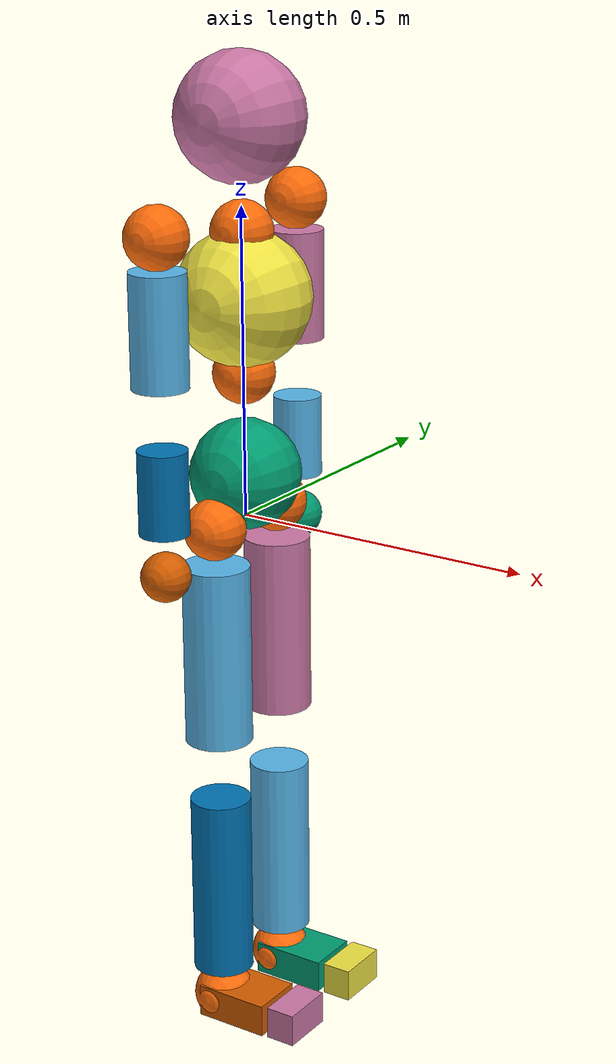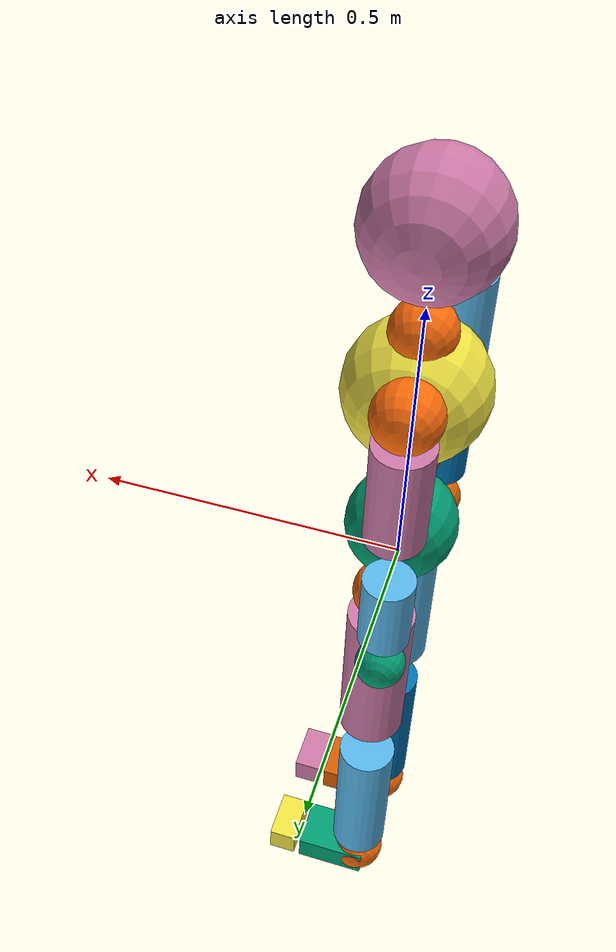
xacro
<?xml version="1.0"?>
<robot  xmlns:xacro="http://www.ros.org/wiki/xacro"  name="dumpUrdf">

<material name="orange">
  <color rgba="${255/255} ${108/255} ${10/255} 1.0"/>
</material>

<xacro:macro name="ball_joint" params="parent child limit effort_limit *origin">

  <link name="${parent}_${child}_link1">
    <inertial>
      <mass value="1e-02" />
      <inertia ixx="1e-02" ixy="0" ixz="0" iyy="1e-02" iyz="0" izz="1e-02" />
    </inertial>
  </link>

  <joint name="j_${parent}_${child}_joint1" type="revolute">
	<xacro:insert_block name="origin"/>
    <parent link="${parent}"/>
    <child link="${parent}_${child}_link1"/>
    <axis xyz="1 0 0" />
	<limit effort="${effort_limit}" lower="${-limit}" upper="${limit}" velocity="3"/>
  </joint>

  <link name="${parent}_${child}_link2">
    <inertial>
      <mass value="1e-02" />
      <inertia ixx="1e-02" ixy="0" ixz="0" iyy="1e-02" iyz="0" izz="1e-02" />
    </inertial>

	<visual>
		<geometry>
			<sphere radius="0.05"  />
		</geometry>
		<material name="orange"/>
	</visual>
  </link>

  <joint name="j_${parent}_${child}_joint2" type="revolute">
    <parent link="${parent}_${child}_link1"/>
    <child link="${parent}_${child}_link2"/>
    <axis xyz="0 1 0" />
	<limit effort="${effort_limit}" lower="${-limit}" upper="${limit}" velocity="3"/>
  </joint>

  <joint name="j_${parent}_${child}_joint3" type="revolute">
    <parent link="${parent}_${child}_link2"/>
    <child link="${child}"/>
    <axis xyz="0 0 1" />
	<limit effort="${effort_limit}" lower="${-limit}" upper="${limit}" velocity="3"/>
  </joint>

</xacro:macro>

<xacro:macro name="sphere_v_c" params="radius *origin">
	<collision>
		<xacro:insert_block name="origin"/>
		<geometry>
			<sphere radius = "${radius/2}"/>
		</geometry>
	</collision>
	<visual>
		<xacro:insert_block name="origin"/>
		<geometry>
			<sphere radius="${radius/2}"/>
		</geometry>
	</visual>
</xacro:macro>

<xacro:macro name="cylinder_v_c" params="radius length *origin">
	<collision>
		<xacro:insert_block name="origin"/>
		<geometry>
			<cylinder length="${length*3/4}" radius = "${radius/4}"/>
		</geometry>
	</collision>
	<visual>
		<xacro:insert_block name="origin"/>
		<geometry>
			<cylinder length="${length}" radius="${radius/2}"/>
		</geometry>
	</visual>
</xacro:macro>

<xacro:macro name="box_v_c" params="x y z *origin">
	<collision>
		<xacro:insert_block name="origin"/>
		<geometry>
			<box size="${x} ${y} ${z}" />
		</geometry>
	</collision>
	<visual>
		<xacro:insert_block name="origin"/>
		<geometry>
			<box size="${x} ${y} ${z}" />
		</geometry>
	</visual>

</xacro:macro>

	<link name="base_link">
	</link>

	<link name="base" >
	</link>

	<joint name="j_base_base_link_rotation" type="fixed">
		<parent link = "base_link" />
		<child link="base" />
		<origin rpy = "${pi/2} 0 0" xyz = "0 0 0" />
	</joint>

	<link name="root" >
		<inertial>
			<origin rpy = "0 0 0" xyz = "0.0 0.07 0.0" />
			<mass value = "6.000000" />
      		<inertia ixx="0.019440000000000002" ixy="0" ixz="0" iyy="0.019440000000000002" iyz="0" izz="0.019440000000000002"/>
		</inertial>

		<xacro:sphere_v_c radius="0.18">
			<origin rpy = "0 0 0" xyz = "0.000000 0.070000 0.000000" />
		</xacro:sphere_v_c>
	</link>
	<joint name="j_root" type="fixed" >
		<parent link = "base" />
		<child link="root" />
		<origin rpy = "0 0 0" xyz = "0 0.000000 0.000000" />
	</joint>

	<link name="chest" >
		<inertial>
			<origin rpy = "0 0 0" xyz = "0.000000 0.120000 0.000000" />
			<mass value = "14.000000" />
      		<inertia ixx="0.06776000000000001" ixy="0" ixz="0" iyy="0.06776000000000001" iyz="0" izz="0.06776000000000001"/>
		</inertial>

		<xacro:sphere_v_c radius="0.22">
			<origin rpy = "0 0 0" xyz = "0.000000 0.120000 0.000000" />
		</xacro:sphere_v_c>
	</link>

	<xacro:ball_joint parent="root" child="chest" limit="1.2" effort_limit="200">
		<origin rpy = "0 0 0" xyz = "0.000000 0.236151 0.000000" />
	</xacro:ball_joint>

	<link name="neck" >
		<inertial>
			<origin rpy = "0 0 0" xyz = "0.0 0.175 0.0" />
			<mass value = "2.000000" />
      		<inertia ixx="0.008405" ixy="0" ixz="0" iyy="0.008405" iyz="0" izz="0.008405"/>
		</inertial>

		<xacro:sphere_v_c radius="0.205">
			<origin rpy = "0 0 0" xyz = "0.0 0.175 0.0" />
		</xacro:sphere_v_c>
	</link>

	<xacro:ball_joint parent="chest" child="neck" limit="1" effort_limit="50" >
		<origin rpy = "0 0 0" xyz = "0.000000 0.223894 0.000000" />
	</xacro:ball_joint>

	<link name="right_hip" >
		<inertial>
			<origin rpy = "0 0 0" xyz = "0.000000 -0.210000 0.000000" />
			<mass value = "4.500000" />
			<inertia ixx="0.037153124999999995" ixy="0.0" ixz="0.0" iyy="0.037153124999999995" iyz="0.0" izz="0.00680625"/>
		</inertial>

		<xacro:cylinder_v_c radius="0.11" length="0.3">
				<origin rpy = "${pi/2} 0 0" xyz = "0.000000 -0.210000 0.000000" />
		</xacro:cylinder_v_c>
	</link>

	<xacro:ball_joint parent="root" child="right_hip" limit="1.5" effort_limit="200">
		<origin rpy = "0 0 0" xyz = "0.000000 0.000000 0.084887" />
	</xacro:ball_joint>

	<link name="right_knee" >
		<inertial>
			<origin rpy = "0 0 0" xyz = "0.000000 -0.200000 0.000000" />
			<mass value = "3.000000" />
			<inertia ixx = "0.1" ixy = "0" ixz = "0" iyy = "0.1" iyz = "0" izz = "0.1" />
		</inertial>
		<xacro:cylinder_v_c length="0.31" radius="0.1">
			<origin rpy = "${pi/2} 0 0" xyz = "0.000000 -0.200000 0.000000" />
		</xacro:cylinder_v_c>
	</link>

	<joint name="j_right_knee" type="revolute" >
		<parent link="right_hip" />
		<child link="right_knee" />
		<limit effort="150.0" lower="-3.14" upper="0." velocity="0.5"/>
		<origin rpy = "0 0 0" xyz = "0.000000 -0.421546 0.000000" />
		<axis xyz = "0.000000 0.000000 1.000000" />
	</joint>

	<link name="right_ankle" >
		<inertial>
			<origin rpy = "0 0 0" xyz = "0.045 -0.00225 0.000000" />
			<mass value = "1.000000" />
			<inertia ixx="0.0009270833333333333" ixy="0.0" ixz="0.0" iyy="0.0028628333333333327" iyz="0.0" izz="0.003285749999999999"/>
		</inertial>

		<xacro:box_v_c x="0.127" y="0.055" z = "0.09">
			<origin rpy = "0 0 0" xyz = "0.045 -0.00225 0.000000"  />
		</xacro:box_v_c>
	</link>

	<joint name="j_right_toe" type="fixed" >
		<parent link="right_ankle" />
		<child link="right_toe" />
		<limit effort="150.0" lower="-3.14" upper="0." velocity="0.5"/>
		<origin rpy = "0 0 0" xyz = "0.1 0.0 0.0" />
		<axis xyz = "0.000000 0.000000 1.000000" />
	</joint>

	<link name="right_toe" >
		<inertial>
			<origin rpy = "0 0 0" xyz = "0.045 0.0 0.0" />
			<mass value = "0.3" />
			<inertia ixx="0.0009270833333333333" ixy="0.0" ixz="0.0" iyy="0.0028628333333333327" iyz="0.0" izz="0.003285749999999999"/>
		</inertial>

		<xacro:box_v_c x="0.05" y="0.055" z = "0.09">
				<origin rpy = "0 0 0" xyz = "0.045 0.0 0.0" />
		</xacro:box_v_c>
	</link>

	<xacro:ball_joint parent="right_knee" child="right_ankle" limit="1.2" effort_limit="90">
		<origin rpy = "0 0 0" xyz = "0.000000 -0.409870 0.000000" />
	</xacro:ball_joint>

	<link name="right_shoulder" >
		<inertial>
			<origin rpy = "0 0 0" xyz = "0.000000 -0.140000 0.000000" />
			<mass value = "1.500000" />
			<inertia ixx="0.004809374999999999" ixy="0.0" ixz="0.0" iyy="0.004809374999999999" iyz="0.0" izz="0.0015187500000000001"/>
		</inertial>

		<xacro:cylinder_v_c length="0.18" radius="0.09">
			<origin rpy = "${pi/2} 0 0" xyz = "0.000000 -0.140000 0.000000" />
		</xacro:cylinder_v_c>
	</link>

	<xacro:ball_joint parent="chest" child="right_shoulder" limit="3.14" effort_limit="100">
		<origin rpy = "0 0 0" xyz = "-0.02406 0.24350 0.18311" />
	</xacro:ball_joint>

	<link name="right_elbow" >
		<inertial>
			<origin rpy = "0 0 0" xyz = "0.000000 -0.120000 0.000000" />
			<mass value = "1.000000" />
			<inertia ixx="0.0019187499999999999" ixy="0.0" ixz="0.0" iyy="0.0019187499999999999" iyz="0.0" izz="0.0008"/>
		</inertial>

		<xacro:cylinder_v_c length="0.135" radius="0.08">
				<origin rpy = "${pi/2} 0 0" xyz = "0.0 -0.12 0.0" />
		</xacro:cylinder_v_c>
	</link>
	<joint name="j_right_elbow" type="revolute" >
		<parent link="right_shoulder" />
		<child link="right_elbow" />
		<limit effort="60.0" lower="0" upper="3.14" velocity="0.5"/>
		<origin rpy = "0 0 0" xyz = "0.000000 -0.274788 0.000000" />
		<axis xyz = "0.000000 0.000000 1.000000" />
	</joint>

	<link name="right_wrist" >
		<inertial>
			<origin rpy = "0 0 0" xyz = "0.000000 0.000000 0.000000" />
			<mass value = "0.500000" />
			<inertia ixx="0.00032" ixy="0" ixz="0" iyy="0.00032" iyz="0" izz="0.00032"/>
		</inertial>

		<xacro:sphere_v_c radius="0.08">
			<origin rpy = "0 0 0" xyz = "0.000000 0.000000 0.000000" />
		</xacro:sphere_v_c>
	</link>

	<joint name="j_right_wrist" type="fixed" >
		<parent link="right_elbow" />
		<child link="right_wrist" />
		<origin rpy = "0 0 0" xyz = "0.000000 -0.258947 0.000000" />
	</joint>

	<link name="left_hip" >
		<inertial>
			<origin rpy = "0 0 0" xyz = "0.000000 -0.210000 0.000000" />
			<mass value = "4.500000" />
			<inertia ixx="0.037153124999999995" ixy="0.0" ixz="0.0" iyy="0.037153124999999995" iyz="0.0" izz="0.00680625"/>
		</inertial>

		<xacro:cylinder_v_c length="0.3" radius="0.11">
				<origin rpy = "${pi/2} 0 0" xyz = "0.000000 -0.210000 0.000000" />
		</xacro:cylinder_v_c>
	</link>

	<xacro:ball_joint parent="root" child="left_hip" limit="1.5" effort_limit="200">
		<origin rpy = "0 0 0" xyz = "0.000000 0.000000 -0.084887" />
	</xacro:ball_joint>

	<link name="left_knee" >
		<inertial>
			<origin rpy = "0 0 0" xyz = "0.000000 -0.200000 0.000000" />
			<mass value = "3.000000" />
			<inertia ixx="0.025900000000000003" ixy="0.0" ixz="0.0" iyy="0.025900000000000003" iyz="0.0" izz="0.0037500000000000007"/>
		</inertial>

		<xacro:cylinder_v_c length="0.31" radius="0.10000">
				<origin rpy = "${pi/2} 0 0" xyz = "0.000000 -0.200000 0.000000" />
		</xacro:cylinder_v_c>
	</link>

	<joint name="j_left_knee" type="revolute" >
		<parent link="left_hip" />
		<child link="left_knee" />
		<limit effort="150.0" lower="-3.14" upper="0." velocity="0.5"/>
		<origin rpy = "0 0 0" xyz = "0.000000 -0.421546 0.000000" />
		<axis xyz = "0.000000 0.000000 1.000000" />
	</joint>

	<link name="left_ankle" >
		<inertial>
			<origin rpy = "0 0 0" xyz = "0.045 -0.00225 0.0" />
			<mass value = "0.7" />
			<inertia ixx="0.0009270833333333333" ixy="0.0" ixz="0.0" iyy="0.0028628333333333327" iyz="0.0" izz="0.003285749999999999"/>
		</inertial>

		<xacro:box_v_c x="0.127" y="0.055" z = "0.09">
				<origin rpy = "0 0 0" xyz = "0.045 -0.00225 0.0" />
		</xacro:box_v_c>
	</link>

	<joint name="j_left_toe" type="fixed" >
		<parent link="left_ankle" />
		<child link="left_toe" />
		<limit effort="150.0" lower="-3.14" upper="0." velocity="0.5"/>
		<origin rpy = "0 0 0" xyz = "0.1 0.0 0.0" />
		<axis xyz = "0.000000 0.000000 1.000000" />
	</joint>

	<link name="left_toe" >
		<inertial>
			<origin rpy = "0 0 0" xyz = "0.045 0.0 0.0" />
			<mass value = "0.3" />
			<inertia ixx="0.0009270833333333333" ixy="0.0" ixz="0.0" iyy="0.0028628333333333327" iyz="0.0" izz="0.003285749999999999"/>
		</inertial>

		<xacro:box_v_c x="0.05" y="0.055" z = "0.09">
				<origin rpy = "0 0 0" xyz = "0.045 0.0 0.0" />
		</xacro:box_v_c>
	</link>

	<xacro:ball_joint parent="left_knee" child="left_ankle" limit="1.2" effort_limit="90">
		<origin rpy = "0 0 0" xyz = "0.000000 -0.40987 0.000000" />
	</xacro:ball_joint>

	<link name="left_shoulder" >
		<inertial>
			<origin rpy = "0 0 0" xyz = "0.000000 -0.140000 0.000000" />
			<mass value = "1.500000" />
			<inertia ixx="0.004809374999999999" ixy="0.0" ixz="0.0" iyy="0.004809374999999999" iyz="0.0" izz="0.0015187500000000001"/>
		</inertial>

		<xacro:cylinder_v_c length="0.18" radius="0.09">
			<origin rpy = "${pi/2} 0 0" xyz = "0.000000 -0.140000 0.000000" />
		</xacro:cylinder_v_c>
	</link>

	<xacro:ball_joint parent="chest" child="left_shoulder" limit="3.14" effort_limit="100">
		<origin rpy = "0 0 0" xyz = "-0.02405 0.24350 -0.18311" />
	</xacro:ball_joint>

	<link name="left_elbow" >
		<inertial>
			<origin rpy = "0 0 0" xyz = "0.000000 -0.12 0.000000" />
			<mass value = "1.000000" />
			<inertia ixx="0.0019187499999999999" ixy="0.0" ixz="0.0" iyy="0.0019187499999999999" iyz="0.0" izz="0.0008"/>
		</inertial>

		<xacro:cylinder_v_c length="0.135" radius="0.08">
			<origin rpy = "${pi/2} 0 0" xyz = "0.000000 -0.12 0.000000" />
		</xacro:cylinder_v_c>
	</link>

	<joint name="j_left_elbow" type="revolute" >
		<parent link="left_shoulder" />
		<child link="left_elbow" />
		<limit effort="60.0" lower="0" upper="3.14" velocity="0.5"/>
		<origin rpy = "0 0 0" xyz = "0.000000 -0.274788 0.000000" />
		<axis xyz = "0.000000 0.000000 1.000000" />
	</joint>

	<link name="left_wrist" >
		<inertial>
			<origin rpy = "0 0 0" xyz = "0.000000 0.000000 0.000000" />
			<mass value = "0.500000" />
			<inertia ixx="0.00032" ixy="0" ixz="0" iyy="0.00032" iyz="0" izz="0.00032"/>
		</inertial>

		<xacro:sphere_v_c radius="0.08">
			<origin rpy = "0 0 0" xyz = "0.000000 0.000000 0.000000" />
		</xacro:sphere_v_c>
	</link>

	<joint name="j_left_wrist_joint" type="fixed" >
		<parent link="left_elbow" />
		<child link="left_wrist" />
		<origin rpy = "0 0 0" xyz = "0.000000 -0.258947 0.000000" />
	</joint>

</robot>
